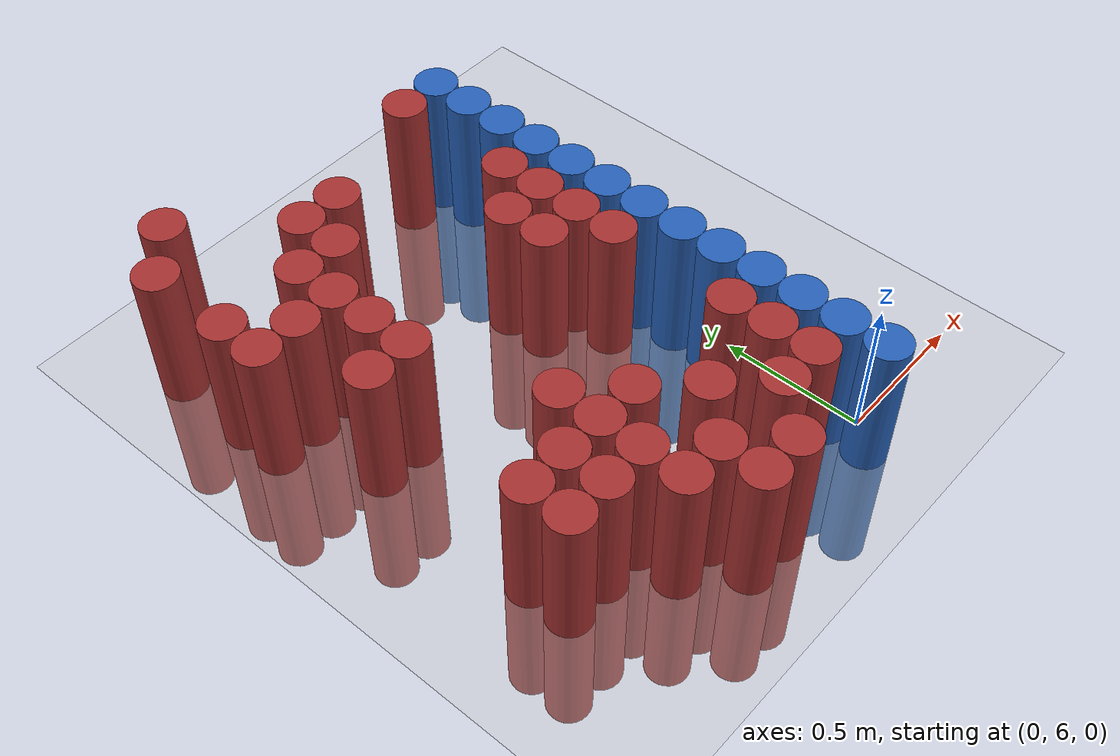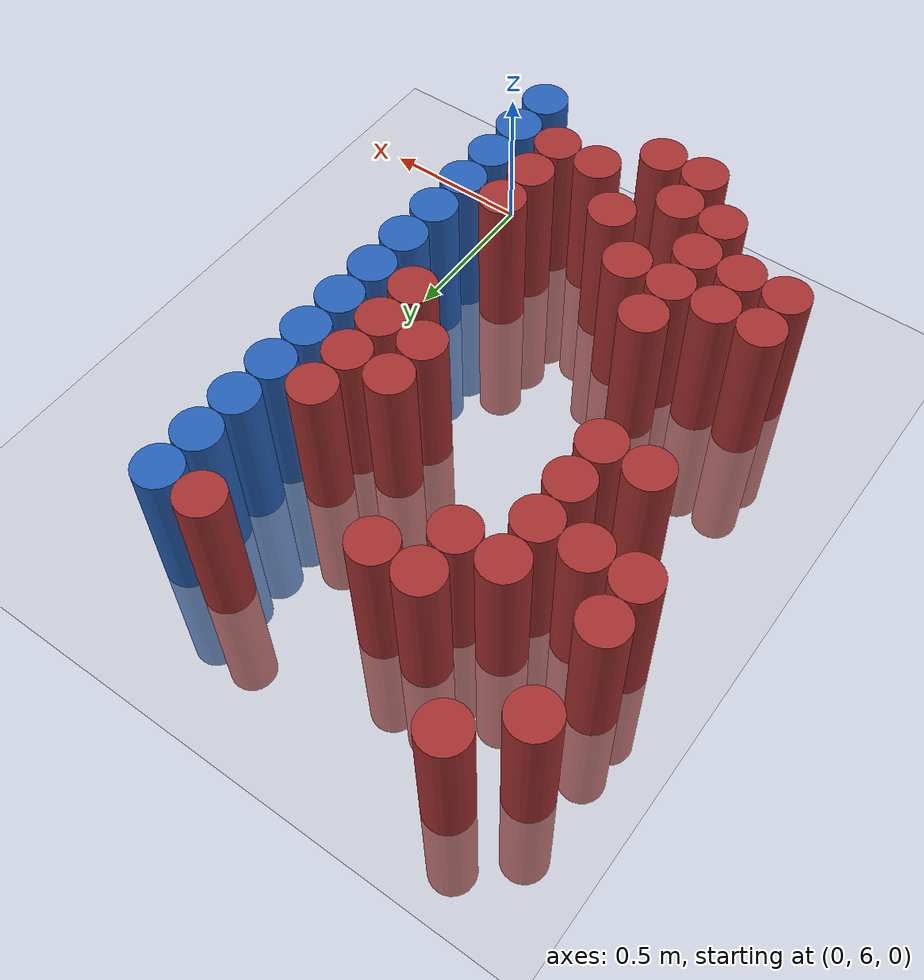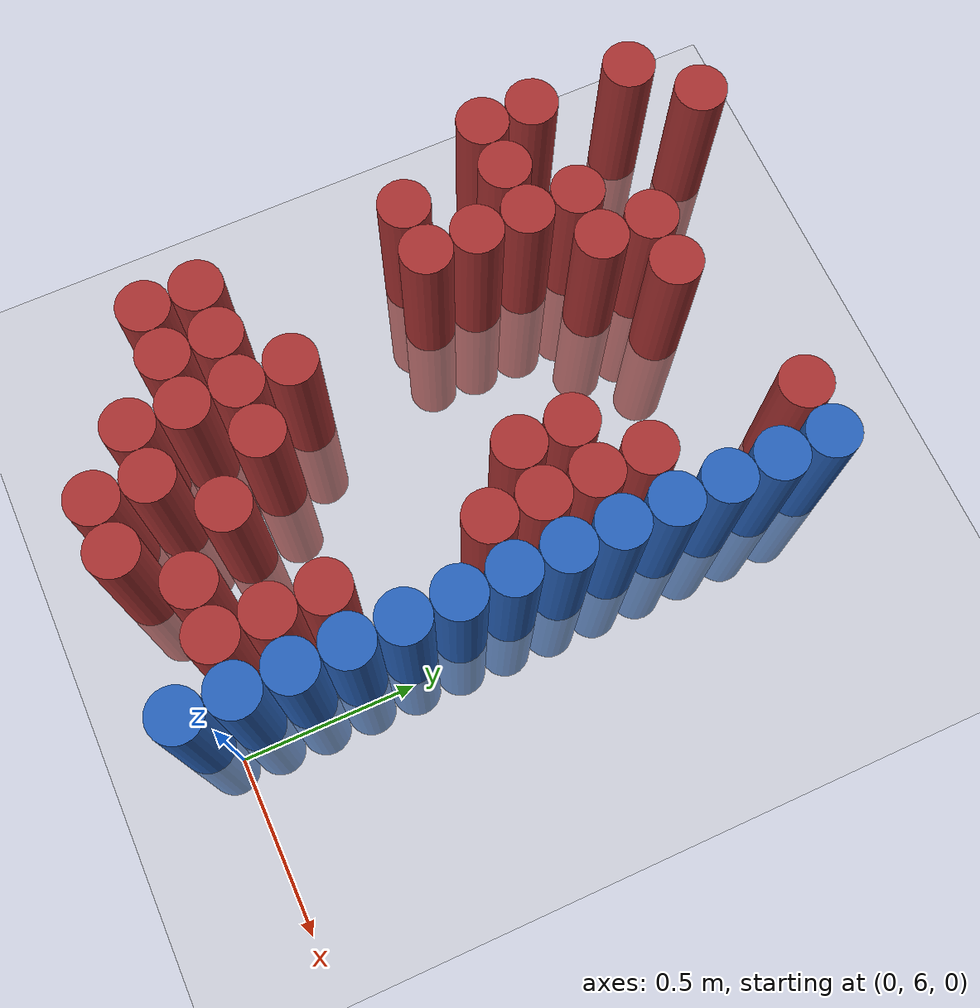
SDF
<sdf version="1.6">
 <world name="default">
  <model name="ground_plane">
   <static>1</static>
   <link name="link">
    <collision name="collision">
     <geometry><plane><normal>0 0 1</normal><size>100 100</size></plane></geometry>
     <surface><friction><ode><mu>100</mu><mu2>50</mu2></ode></friction></surface>
    </collision>
    <visual name="visual">
     <cast_shadows>0</cast_shadows>
     <geometry><plane><normal>0 0 1</normal><size>100 100</size></plane></geometry>
     <material>
      <script><uri>file://media/materials/scripts/gazebo.material</uri><name>Gazebo/Grey</name></script>
     </material>
    </visual>
   </link>
  </model>
  <model name="unit_cylinder_228">
   <static>1</static>
   <pose>-1.275000 7.275000 0.000000 0.000000 0.000000 0.000000</pose>
   <link name="link">
    <inertial>
     <mass>1</mass>
     <inertia><ixx>0.145833</ixx><ixy>0</ixy><ixz>0</ixz><iyy>0.145833</iyy><iyz>0</iyz><izz>0.125</izz></inertia>
    </inertial>
    <collision name="collision">
     <geometry><cylinder><radius>0.075000</radius><length>1</length></cylinder></geometry>
    </collision>
    <visual name="visual">
     <geometry><cylinder><radius>0.075000</radius><length>1</length></cylinder></geometry>
     <material>
      <ambient>0.648000 0.192000 0.192000 1</ambient>
      <diffuse>0.648000 0.192000 0.192000 1</diffuse>
     </material>
     <material>
      <script><name>Gazebo/Grey</name><uri>file://media/materials/scripts/gazebo.material</uri></script>
     </material>
    </visual>
   </link>
  </model>
  <model name="unit_cylinder_229">
   <static>1</static>
   <pose>-1.275000 7.425000 0.000000 0.000000 0.000000 0.000000</pose>
   <link name="link">
    <inertial>
     <mass>1</mass>
     <inertia><ixx>0.145833</ixx><ixy>0</ixy><ixz>0</ixz><iyy>0.145833</iyy><iyz>0</iyz><izz>0.125</izz></inertia>
    </inertial>
    <collision name="collision">
     <geometry><cylinder><radius>0.075000</radius><length>1</length></cylinder></geometry>
    </collision>
    <visual name="visual">
     <geometry><cylinder><radius>0.075000</radius><length>1</length></cylinder></geometry>
     <material>
      <ambient>0.648000 0.192000 0.192000 1</ambient>
      <diffuse>0.648000 0.192000 0.192000 1</diffuse>
     </material>
     <material>
      <script><name>Gazebo/Grey</name><uri>file://media/materials/scripts/gazebo.material</uri></script>
     </material>
    </visual>
   </link>
  </model>
  <model name="unit_cylinder_230">
   <static>1</static>
   <pose>-1.275000 7.725000 0.000000 0.000000 0.000000 0.000000</pose>
   <link name="link">
    <inertial>
     <mass>1</mass>
     <inertia><ixx>0.145833</ixx><ixy>0</ixy><ixz>0</ixz><iyy>0.145833</iyy><iyz>0</iyz><izz>0.125</izz></inertia>
    </inertial>
    <collision name="collision">
     <geometry><cylinder><radius>0.075000</radius><length>1</length></cylinder></geometry>
    </collision>
    <visual name="visual">
     <geometry><cylinder><radius>0.075000</radius><length>1</length></cylinder></geometry>
     <material>
      <ambient>0.648000 0.192000 0.192000 1</ambient>
      <diffuse>0.648000 0.192000 0.192000 1</diffuse>
     </material>
     <material>
      <script><name>Gazebo/Grey</name><uri>file://media/materials/scripts/gazebo.material</uri></script>
     </material>
    </visual>
   </link>
  </model>
  <model name="unit_cylinder_237">
   <static>1</static>
   <pose>-1.125000 6.225000 0.000000 0.000000 0.000000 0.000000</pose>
   <link name="link">
    <inertial>
     <mass>1</mass>
     <inertia><ixx>0.145833</ixx><ixy>0</ixy><ixz>0</ixz><iyy>0.145833</iyy><iyz>0</iyz><izz>0.125</izz></inertia>
    </inertial>
    <collision name="collision">
     <geometry><cylinder><radius>0.075000</radius><length>1</length></cylinder></geometry>
    </collision>
    <visual name="visual">
     <geometry><cylinder><radius>0.075000</radius><length>1</length></cylinder></geometry>
     <material>
      <ambient>0.648000 0.192000 0.192000 1</ambient>
      <diffuse>0.648000 0.192000 0.192000 1</diffuse>
     </material>
     <material>
      <script><name>Gazebo/Grey</name><uri>file://media/materials/scripts/gazebo.material</uri></script>
     </material>
    </visual>
   </link>
  </model>
  <model name="unit_cylinder_238">
   <static>1</static>
   <pose>-1.125000 6.375000 0.000000 0.000000 0.000000 0.000000</pose>
   <link name="link">
    <inertial>
     <mass>1</mass>
     <inertia><ixx>0.145833</ixx><ixy>0</ixy><ixz>0</ixz><iyy>0.145833</iyy><iyz>0</iyz><izz>0.125</izz></inertia>
    </inertial>
    <collision name="collision">
     <geometry><cylinder><radius>0.075000</radius><length>1</length></cylinder></geometry>
    </collision>
    <visual name="visual">
     <geometry><cylinder><radius>0.075000</radius><length>1</length></cylinder></geometry>
     <material>
      <ambient>0.648000 0.192000 0.192000 1</ambient>
      <diffuse>0.648000 0.192000 0.192000 1</diffuse>
     </material>
     <material>
      <script><name>Gazebo/Grey</name><uri>file://media/materials/scripts/gazebo.material</uri></script>
     </material>
    </visual>
   </link>
  </model>
  <model name="unit_cylinder_239">
   <static>1</static>
   <pose>-1.125000 6.975000 0.000000 0.000000 0.000000 0.000000</pose>
   <link name="link">
    <inertial>
     <mass>1</mass>
     <inertia><ixx>0.145833</ixx><ixy>0</ixy><ixz>0</ixz><iyy>0.145833</iyy><iyz>0</iyz><izz>0.125</izz></inertia>
    </inertial>
    <collision name="collision">
     <geometry><cylinder><radius>0.075000</radius><length>1</length></cylinder></geometry>
    </collision>
    <visual name="visual">
     <geometry><cylinder><radius>0.075000</radius><length>1</length></cylinder></geometry>
     <material>
      <ambient>0.648000 0.192000 0.192000 1</ambient>
      <diffuse>0.648000 0.192000 0.192000 1</diffuse>
     </material>
     <material>
      <script><name>Gazebo/Grey</name><uri>file://media/materials/scripts/gazebo.material</uri></script>
     </material>
    </visual>
   </link>
  </model>
  <model name="unit_cylinder_240">
   <static>1</static>
   <pose>-1.125000 7.275000 0.000000 0.000000 0.000000 0.000000</pose>
   <link name="link">
    <inertial>
     <mass>1</mass>
     <inertia><ixx>0.145833</ixx><ixy>0</ixy><ixz>0</ixz><iyy>0.145833</iyy><iyz>0</iyz><izz>0.125</izz></inertia>
    </inertial>
    <collision name="collision">
     <geometry><cylinder><radius>0.075000</radius><length>1</length></cylinder></geometry>
    </collision>
    <visual name="visual">
     <geometry><cylinder><radius>0.075000</radius><length>1</length></cylinder></geometry>
     <material>
      <ambient>0.648000 0.192000 0.192000 1</ambient>
      <diffuse>0.648000 0.192000 0.192000 1</diffuse>
     </material>
     <material>
      <script><name>Gazebo/Grey</name><uri>file://media/materials/scripts/gazebo.material</uri></script>
     </material>
    </visual>
   </link>
  </model>
  <model name="unit_cylinder_241">
   <static>1</static>
   <pose>-1.125000 7.875000 0.000000 0.000000 0.000000 0.000000</pose>
   <link name="link">
    <inertial>
     <mass>1</mass>
     <inertia><ixx>0.145833</ixx><ixy>0</ixy><ixz>0</ixz><iyy>0.145833</iyy><iyz>0</iyz><izz>0.125</izz></inertia>
    </inertial>
    <collision name="collision">
     <geometry><cylinder><radius>0.075000</radius><length>1</length></cylinder></geometry>
    </collision>
    <visual name="visual">
     <geometry><cylinder><radius>0.075000</radius><length>1</length></cylinder></geometry>
     <material>
      <ambient>0.648000 0.192000 0.192000 1</ambient>
      <diffuse>0.648000 0.192000 0.192000 1</diffuse>
     </material>
     <material>
      <script><name>Gazebo/Grey</name><uri>file://media/materials/scripts/gazebo.material</uri></script>
     </material>
    </visual>
   </link>
  </model>
  <model name="unit_cylinder_251">
   <static>1</static>
   <pose>-0.975000 6.225000 0.000000 0.000000 0.000000 0.000000</pose>
   <link name="link">
    <inertial>
     <mass>1</mass>
     <inertia><ixx>0.145833</ixx><ixy>0</ixy><ixz>0</ixz><iyy>0.145833</iyy><iyz>0</iyz><izz>0.125</izz></inertia>
    </inertial>
    <collision name="collision">
     <geometry><cylinder><radius>0.075000</radius><length>1</length></cylinder></geometry>
    </collision>
    <visual name="visual">
     <geometry><cylinder><radius>0.075000</radius><length>1</length></cylinder></geometry>
     <material>
      <ambient>0.648000 0.192000 0.192000 1</ambient>
      <diffuse>0.648000 0.192000 0.192000 1</diffuse>
     </material>
     <material>
      <script><name>Gazebo/Grey</name><uri>file://media/materials/scripts/gazebo.material</uri></script>
     </material>
    </visual>
   </link>
  </model>
  <model name="unit_cylinder_252">
   <static>1</static>
   <pose>-0.975000 6.375000 0.000000 0.000000 0.000000 0.000000</pose>
   <link name="link">
    <inertial>
     <mass>1</mass>
     <inertia><ixx>0.145833</ixx><ixy>0</ixy><ixz>0</ixz><iyy>0.145833</iyy><iyz>0</iyz><izz>0.125</izz></inertia>
    </inertial>
    <collision name="collision">
     <geometry><cylinder><radius>0.075000</radius><length>1</length></cylinder></geometry>
    </collision>
    <visual name="visual">
     <geometry><cylinder><radius>0.075000</radius><length>1</length></cylinder></geometry>
     <material>
      <ambient>0.648000 0.192000 0.192000 1</ambient>
      <diffuse>0.648000 0.192000 0.192000 1</diffuse>
     </material>
     <material>
      <script><name>Gazebo/Grey</name><uri>file://media/materials/scripts/gazebo.material</uri></script>
     </material>
    </visual>
   </link>
  </model>
  <model name="unit_cylinder_253">
   <static>1</static>
   <pose>-0.975000 6.975000 0.000000 0.000000 0.000000 0.000000</pose>
   <link name="link">
    <inertial>
     <mass>1</mass>
     <inertia><ixx>0.145833</ixx><ixy>0</ixy><ixz>0</ixz><iyy>0.145833</iyy><iyz>0</iyz><izz>0.125</izz></inertia>
    </inertial>
    <collision name="collision">
     <geometry><cylinder><radius>0.075000</radius><length>1</length></cylinder></geometry>
    </collision>
    <visual name="visual">
     <geometry><cylinder><radius>0.075000</radius><length>1</length></cylinder></geometry>
     <material>
      <ambient>0.648000 0.192000 0.192000 1</ambient>
      <diffuse>0.648000 0.192000 0.192000 1</diffuse>
     </material>
     <material>
      <script><name>Gazebo/Grey</name><uri>file://media/materials/scripts/gazebo.material</uri></script>
     </material>
    </visual>
   </link>
  </model>
  <model name="unit_cylinder_254">
   <static>1</static>
   <pose>-0.975000 7.125000 0.000000 0.000000 0.000000 0.000000</pose>
   <link name="link">
    <inertial>
     <mass>1</mass>
     <inertia><ixx>0.145833</ixx><ixy>0</ixy><ixz>0</ixz><iyy>0.145833</iyy><iyz>0</iyz><izz>0.125</izz></inertia>
    </inertial>
    <collision name="collision">
     <geometry><cylinder><radius>0.075000</radius><length>1</length></cylinder></geometry>
    </collision>
    <visual name="visual">
     <geometry><cylinder><radius>0.075000</radius><length>1</length></cylinder></geometry>
     <material>
      <ambient>0.648000 0.192000 0.192000 1</ambient>
      <diffuse>0.648000 0.192000 0.192000 1</diffuse>
     </material>
     <material>
      <script><name>Gazebo/Grey</name><uri>file://media/materials/scripts/gazebo.material</uri></script>
     </material>
    </visual>
   </link>
  </model>
  <model name="unit_cylinder_255">
   <static>1</static>
   <pose>-0.975000 7.275000 0.000000 0.000000 0.000000 0.000000</pose>
   <link name="link">
    <inertial>
     <mass>1</mass>
     <inertia><ixx>0.145833</ixx><ixy>0</ixy><ixz>0</ixz><iyy>0.145833</iyy><iyz>0</iyz><izz>0.125</izz></inertia>
    </inertial>
    <collision name="collision">
     <geometry><cylinder><radius>0.075000</radius><length>1</length></cylinder></geometry>
    </collision>
    <visual name="visual">
     <geometry><cylinder><radius>0.075000</radius><length>1</length></cylinder></geometry>
     <material>
      <ambient>0.648000 0.192000 0.192000 1</ambient>
      <diffuse>0.648000 0.192000 0.192000 1</diffuse>
     </material>
     <material>
      <script><name>Gazebo/Grey</name><uri>file://media/materials/scripts/gazebo.material</uri></script>
     </material>
    </visual>
   </link>
  </model>
  <model name="unit_cylinder_256">
   <static>1</static>
   <pose>-0.975000 7.425000 0.000000 0.000000 0.000000 0.000000</pose>
   <link name="link">
    <inertial>
     <mass>1</mass>
     <inertia><ixx>0.145833</ixx><ixy>0</ixy><ixz>0</ixz><iyy>0.145833</iyy><iyz>0</iyz><izz>0.125</izz></inertia>
    </inertial>
    <collision name="collision">
     <geometry><cylinder><radius>0.075000</radius><length>1</length></cylinder></geometry>
    </collision>
    <visual name="visual">
     <geometry><cylinder><radius>0.075000</radius><length>1</length></cylinder></geometry>
     <material>
      <ambient>0.648000 0.192000 0.192000 1</ambient>
      <diffuse>0.648000 0.192000 0.192000 1</diffuse>
     </material>
     <material>
      <script><name>Gazebo/Grey</name><uri>file://media/materials/scripts/gazebo.material</uri></script>
     </material>
    </visual>
   </link>
  </model>
  <model name="unit_cylinder_269">
   <static>1</static>
   <pose>-0.825000 6.075000 0.000000 0.000000 0.000000 0.000000</pose>
   <link name="link">
    <inertial>
     <mass>1</mass>
     <inertia><ixx>0.145833</ixx><ixy>0</ixy><ixz>0</ixz><iyy>0.145833</iyy><iyz>0</iyz><izz>0.125</izz></inertia>
    </inertial>
    <collision name="collision">
     <geometry><cylinder><radius>0.075000</radius><length>1</length></cylinder></geometry>
    </collision>
    <visual name="visual">
     <geometry><cylinder><radius>0.075000</radius><length>1</length></cylinder></geometry>
     <material>
      <ambient>0.648000 0.192000 0.192000 1</ambient>
      <diffuse>0.648000 0.192000 0.192000 1</diffuse>
     </material>
     <material>
      <script><name>Gazebo/Grey</name><uri>file://media/materials/scripts/gazebo.material</uri></script>
     </material>
    </visual>
   </link>
  </model>
  <model name="unit_cylinder_270">
   <static>1</static>
   <pose>-0.825000 6.225000 0.000000 0.000000 0.000000 0.000000</pose>
   <link name="link">
    <inertial>
     <mass>1</mass>
     <inertia><ixx>0.145833</ixx><ixy>0</ixy><ixz>0</ixz><iyy>0.145833</iyy><iyz>0</iyz><izz>0.125</izz></inertia>
    </inertial>
    <collision name="collision">
     <geometry><cylinder><radius>0.075000</radius><length>1</length></cylinder></geometry>
    </collision>
    <visual name="visual">
     <geometry><cylinder><radius>0.075000</radius><length>1</length></cylinder></geometry>
     <material>
      <ambient>0.648000 0.192000 0.192000 1</ambient>
      <diffuse>0.648000 0.192000 0.192000 1</diffuse>
     </material>
     <material>
      <script><name>Gazebo/Grey</name><uri>file://media/materials/scripts/gazebo.material</uri></script>
     </material>
    </visual>
   </link>
  </model>
  <model name="unit_cylinder_271">
   <static>1</static>
   <pose>-0.825000 6.375000 0.000000 0.000000 0.000000 0.000000</pose>
   <link name="link">
    <inertial>
     <mass>1</mass>
     <inertia><ixx>0.145833</ixx><ixy>0</ixy><ixz>0</ixz><iyy>0.145833</iyy><iyz>0</iyz><izz>0.125</izz></inertia>
    </inertial>
    <collision name="collision">
     <geometry><cylinder><radius>0.075000</radius><length>1</length></cylinder></geometry>
    </collision>
    <visual name="visual">
     <geometry><cylinder><radius>0.075000</radius><length>1</length></cylinder></geometry>
     <material>
      <ambient>0.648000 0.192000 0.192000 1</ambient>
      <diffuse>0.648000 0.192000 0.192000 1</diffuse>
     </material>
     <material>
      <script><name>Gazebo/Grey</name><uri>file://media/materials/scripts/gazebo.material</uri></script>
     </material>
    </visual>
   </link>
  </model>
  <model name="unit_cylinder_272">
   <static>1</static>
   <pose>-0.825000 6.525000 0.000000 0.000000 0.000000 0.000000</pose>
   <link name="link">
    <inertial>
     <mass>1</mass>
     <inertia><ixx>0.145833</ixx><ixy>0</ixy><ixz>0</ixz><iyy>0.145833</iyy><iyz>0</iyz><izz>0.125</izz></inertia>
    </inertial>
    <collision name="collision">
     <geometry><cylinder><radius>0.075000</radius><length>1</length></cylinder></geometry>
    </collision>
    <visual name="visual">
     <geometry><cylinder><radius>0.075000</radius><length>1</length></cylinder></geometry>
     <material>
      <ambient>0.648000 0.192000 0.192000 1</ambient>
      <diffuse>0.648000 0.192000 0.192000 1</diffuse>
     </material>
     <material>
      <script><name>Gazebo/Grey</name><uri>file://media/materials/scripts/gazebo.material</uri></script>
     </material>
    </visual>
   </link>
  </model>
  <model name="unit_cylinder_273">
   <static>1</static>
   <pose>-0.825000 7.425000 0.000000 0.000000 0.000000 0.000000</pose>
   <link name="link">
    <inertial>
     <mass>1</mass>
     <inertia><ixx>0.145833</ixx><ixy>0</ixy><ixz>0</ixz><iyy>0.145833</iyy><iyz>0</iyz><izz>0.125</izz></inertia>
    </inertial>
    <collision name="collision">
     <geometry><cylinder><radius>0.075000</radius><length>1</length></cylinder></geometry>
    </collision>
    <visual name="visual">
     <geometry><cylinder><radius>0.075000</radius><length>1</length></cylinder></geometry>
     <material>
      <ambient>0.648000 0.192000 0.192000 1</ambient>
      <diffuse>0.648000 0.192000 0.192000 1</diffuse>
     </material>
     <material>
      <script><name>Gazebo/Grey</name><uri>file://media/materials/scripts/gazebo.material</uri></script>
     </material>
    </visual>
   </link>
  </model>
  <model name="unit_cylinder_274">
   <static>1</static>
   <pose>-0.825000 7.575000 0.000000 0.000000 0.000000 0.000000</pose>
   <link name="link">
    <inertial>
     <mass>1</mass>
     <inertia><ixx>0.145833</ixx><ixy>0</ixy><ixz>0</ixz><iyy>0.145833</iyy><iyz>0</iyz><izz>0.125</izz></inertia>
    </inertial>
    <collision name="collision">
     <geometry><cylinder><radius>0.075000</radius><length>1</length></cylinder></geometry>
    </collision>
    <visual name="visual">
     <geometry><cylinder><radius>0.075000</radius><length>1</length></cylinder></geometry>
     <material>
      <ambient>0.648000 0.192000 0.192000 1</ambient>
      <diffuse>0.648000 0.192000 0.192000 1</diffuse>
     </material>
     <material>
      <script><name>Gazebo/Grey</name><uri>file://media/materials/scripts/gazebo.material</uri></script>
     </material>
    </visual>
   </link>
  </model>
  <model name="unit_cylinder_282">
   <static>1</static>
   <pose>-0.675000 5.925000 0.000000 0.000000 0.000000 0.000000</pose>
   <link name="link">
    <inertial>
     <mass>1</mass>
     <inertia><ixx>0.145833</ixx><ixy>0</ixy><ixz>0</ixz><iyy>0.145833</iyy><iyz>0</iyz><izz>0.125</izz></inertia>
    </inertial>
    <collision name="collision">
     <geometry><cylinder><radius>0.075000</radius><length>1</length></cylinder></geometry>
    </collision>
    <visual name="visual">
     <geometry><cylinder><radius>0.075000</radius><length>1</length></cylinder></geometry>
     <material>
      <ambient>0.648000 0.192000 0.192000 1</ambient>
      <diffuse>0.648000 0.192000 0.192000 1</diffuse>
     </material>
     <material>
      <script><name>Gazebo/Grey</name><uri>file://media/materials/scripts/gazebo.material</uri></script>
     </material>
    </visual>
   </link>
  </model>
  <model name="unit_cylinder_283">
   <static>1</static>
   <pose>-0.675000 6.075000 0.000000 0.000000 0.000000 0.000000</pose>
   <link name="link">
    <inertial>
     <mass>1</mass>
     <inertia><ixx>0.145833</ixx><ixy>0</ixy><ixz>0</ixz><iyy>0.145833</iyy><iyz>0</iyz><izz>0.125</izz></inertia>
    </inertial>
    <collision name="collision">
     <geometry><cylinder><radius>0.075000</radius><length>1</length></cylinder></geometry>
    </collision>
    <visual name="visual">
     <geometry><cylinder><radius>0.075000</radius><length>1</length></cylinder></geometry>
     <material>
      <ambient>0.648000 0.192000 0.192000 1</ambient>
      <diffuse>0.648000 0.192000 0.192000 1</diffuse>
     </material>
     <material>
      <script><name>Gazebo/Grey</name><uri>file://media/materials/scripts/gazebo.material</uri></script>
     </material>
    </visual>
   </link>
  </model>
  <model name="unit_cylinder_284">
   <static>1</static>
   <pose>-0.675000 6.375000 0.000000 0.000000 0.000000 0.000000</pose>
   <link name="link">
    <inertial>
     <mass>1</mass>
     <inertia><ixx>0.145833</ixx><ixy>0</ixy><ixz>0</ixz><iyy>0.145833</iyy><iyz>0</iyz><izz>0.125</izz></inertia>
    </inertial>
    <collision name="collision">
     <geometry><cylinder><radius>0.075000</radius><length>1</length></cylinder></geometry>
    </collision>
    <visual name="visual">
     <geometry><cylinder><radius>0.075000</radius><length>1</length></cylinder></geometry>
     <material>
      <ambient>0.648000 0.192000 0.192000 1</ambient>
      <diffuse>0.648000 0.192000 0.192000 1</diffuse>
     </material>
     <material>
      <script><name>Gazebo/Grey</name><uri>file://media/materials/scripts/gazebo.material</uri></script>
     </material>
    </visual>
   </link>
  </model>
  <model name="unit_cylinder_285">
   <static>1</static>
   <pose>-0.675000 7.575000 0.000000 0.000000 0.000000 0.000000</pose>
   <link name="link">
    <inertial>
     <mass>1</mass>
     <inertia><ixx>0.145833</ixx><ixy>0</ixy><ixz>0</ixz><iyy>0.145833</iyy><iyz>0</iyz><izz>0.125</izz></inertia>
    </inertial>
    <collision name="collision">
     <geometry><cylinder><radius>0.075000</radius><length>1</length></cylinder></geometry>
    </collision>
    <visual name="visual">
     <geometry><cylinder><radius>0.075000</radius><length>1</length></cylinder></geometry>
     <material>
      <ambient>0.648000 0.192000 0.192000 1</ambient>
      <diffuse>0.648000 0.192000 0.192000 1</diffuse>
     </material>
     <material>
      <script><name>Gazebo/Grey</name><uri>file://media/materials/scripts/gazebo.material</uri></script>
     </material>
    </visual>
   </link>
  </model>
  <model name="unit_cylinder_290">
   <static>1</static>
   <pose>-0.525000 5.925000 0.000000 0.000000 0.000000 0.000000</pose>
   <link name="link">
    <inertial>
     <mass>1</mass>
     <inertia><ixx>0.145833</ixx><ixy>0</ixy><ixz>0</ixz><iyy>0.145833</iyy><iyz>0</iyz><izz>0.125</izz></inertia>
    </inertial>
    <collision name="collision">
     <geometry><cylinder><radius>0.075000</radius><length>1</length></cylinder></geometry>
    </collision>
    <visual name="visual">
     <geometry><cylinder><radius>0.075000</radius><length>1</length></cylinder></geometry>
     <material>
      <ambient>0.648000 0.192000 0.192000 1</ambient>
      <diffuse>0.648000 0.192000 0.192000 1</diffuse>
     </material>
     <material>
      <script><name>Gazebo/Grey</name><uri>file://media/materials/scripts/gazebo.material</uri></script>
     </material>
    </visual>
   </link>
  </model>
  <model name="unit_cylinder_291">
   <static>1</static>
   <pose>-0.525000 6.225000 0.000000 0.000000 0.000000 0.000000</pose>
   <link name="link">
    <inertial>
     <mass>1</mass>
     <inertia><ixx>0.145833</ixx><ixy>0</ixy><ixz>0</ixz><iyy>0.145833</iyy><iyz>0</iyz><izz>0.125</izz></inertia>
    </inertial>
    <collision name="collision">
     <geometry><cylinder><radius>0.075000</radius><length>1</length></cylinder></geometry>
    </collision>
    <visual name="visual">
     <geometry><cylinder><radius>0.075000</radius><length>1</length></cylinder></geometry>
     <material>
      <ambient>0.648000 0.192000 0.192000 1</ambient>
      <diffuse>0.648000 0.192000 0.192000 1</diffuse>
     </material>
     <material>
      <script><name>Gazebo/Grey</name><uri>file://media/materials/scripts/gazebo.material</uri></script>
     </material>
    </visual>
   </link>
  </model>
  <model name="unit_cylinder_297">
   <static>1</static>
   <pose>-0.375000 6.075000 0.000000 0.000000 0.000000 0.000000</pose>
   <link name="link">
    <inertial>
     <mass>1</mass>
     <inertia><ixx>0.145833</ixx><ixy>0</ixy><ixz>0</ixz><iyy>0.145833</iyy><iyz>0</iyz><izz>0.125</izz></inertia>
    </inertial>
    <collision name="collision">
     <geometry><cylinder><radius>0.075000</radius><length>1</length></cylinder></geometry>
    </collision>
    <visual name="visual">
     <geometry><cylinder><radius>0.075000</radius><length>1</length></cylinder></geometry>
     <material>
      <ambient>0.648000 0.192000 0.192000 1</ambient>
      <diffuse>0.648000 0.192000 0.192000 1</diffuse>
     </material>
     <material>
      <script><name>Gazebo/Grey</name><uri>file://media/materials/scripts/gazebo.material</uri></script>
     </material>
    </visual>
   </link>
  </model>
  <model name="unit_cylinder_298">
   <static>1</static>
   <pose>-0.375000 6.975000 0.000000 0.000000 0.000000 0.000000</pose>
   <link name="link">
    <inertial>
     <mass>1</mass>
     <inertia><ixx>0.145833</ixx><ixy>0</ixy><ixz>0</ixz><iyy>0.145833</iyy><iyz>0</iyz><izz>0.125</izz></inertia>
    </inertial>
    <collision name="collision">
     <geometry><cylinder><radius>0.075000</radius><length>1</length></cylinder></geometry>
    </collision>
    <visual name="visual">
     <geometry><cylinder><radius>0.075000</radius><length>1</length></cylinder></geometry>
     <material>
      <ambient>0.648000 0.192000 0.192000 1</ambient>
      <diffuse>0.648000 0.192000 0.192000 1</diffuse>
     </material>
     <material>
      <script><name>Gazebo/Grey</name><uri>file://media/materials/scripts/gazebo.material</uri></script>
     </material>
    </visual>
   </link>
  </model>
  <model name="unit_cylinder_299">
   <static>1</static>
   <pose>-0.375000 7.125000 0.000000 0.000000 0.000000 0.000000</pose>
   <link name="link">
    <inertial>
     <mass>1</mass>
     <inertia><ixx>0.145833</ixx><ixy>0</ixy><ixz>0</ixz><iyy>0.145833</iyy><iyz>0</iyz><izz>0.125</izz></inertia>
    </inertial>
    <collision name="collision">
     <geometry><cylinder><radius>0.075000</radius><length>1</length></cylinder></geometry>
    </collision>
    <visual name="visual">
     <geometry><cylinder><radius>0.075000</radius><length>1</length></cylinder></geometry>
     <material>
      <ambient>0.648000 0.192000 0.192000 1</ambient>
      <diffuse>0.648000 0.192000 0.192000 1</diffuse>
     </material>
     <material>
      <script><name>Gazebo/Grey</name><uri>file://media/materials/scripts/gazebo.material</uri></script>
     </material>
    </visual>
   </link>
  </model>
  <model name="unit_cylinder_306">
   <static>1</static>
   <pose>-0.225000 6.075000 0.000000 0.000000 0.000000 0.000000</pose>
   <link name="link">
    <inertial>
     <mass>1</mass>
     <inertia><ixx>0.145833</ixx><ixy>0</ixy><ixz>0</ixz><iyy>0.145833</iyy><iyz>0</iyz><izz>0.125</izz></inertia>
    </inertial>
    <collision name="collision">
     <geometry><cylinder><radius>0.075000</radius><length>1</length></cylinder></geometry>
    </collision>
    <visual name="visual">
     <geometry><cylinder><radius>0.075000</radius><length>1</length></cylinder></geometry>
     <material>
      <ambient>0.648000 0.192000 0.192000 1</ambient>
      <diffuse>0.648000 0.192000 0.192000 1</diffuse>
     </material>
     <material>
      <script><name>Gazebo/Grey</name><uri>file://media/materials/scripts/gazebo.material</uri></script>
     </material>
    </visual>
   </link>
  </model>
  <model name="unit_cylinder_307">
   <static>1</static>
   <pose>-0.225000 6.225000 0.000000 0.000000 0.000000 0.000000</pose>
   <link name="link">
    <inertial>
     <mass>1</mass>
     <inertia><ixx>0.145833</ixx><ixy>0</ixy><ixz>0</ixz><iyy>0.145833</iyy><iyz>0</iyz><izz>0.125</izz></inertia>
    </inertial>
    <collision name="collision">
     <geometry><cylinder><radius>0.075000</radius><length>1</length></cylinder></geometry>
    </collision>
    <visual name="visual">
     <geometry><cylinder><radius>0.075000</radius><length>1</length></cylinder></geometry>
     <material>
      <ambient>0.648000 0.192000 0.192000 1</ambient>
      <diffuse>0.648000 0.192000 0.192000 1</diffuse>
     </material>
     <material>
      <script><name>Gazebo/Grey</name><uri>file://media/materials/scripts/gazebo.material</uri></script>
     </material>
    </visual>
   </link>
  </model>
  <model name="unit_cylinder_308">
   <static>1</static>
   <pose>-0.225000 6.375000 0.000000 0.000000 0.000000 0.000000</pose>
   <link name="link">
    <inertial>
     <mass>1</mass>
     <inertia><ixx>0.145833</ixx><ixy>0</ixy><ixz>0</ixz><iyy>0.145833</iyy><iyz>0</iyz><izz>0.125</izz></inertia>
    </inertial>
    <collision name="collision">
     <geometry><cylinder><radius>0.075000</radius><length>1</length></cylinder></geometry>
    </collision>
    <visual name="visual">
     <geometry><cylinder><radius>0.075000</radius><length>1</length></cylinder></geometry>
     <material>
      <ambient>0.648000 0.192000 0.192000 1</ambient>
      <diffuse>0.648000 0.192000 0.192000 1</diffuse>
     </material>
     <material>
      <script><name>Gazebo/Grey</name><uri>file://media/materials/scripts/gazebo.material</uri></script>
     </material>
    </visual>
   </link>
  </model>
  <model name="unit_cylinder_309">
   <static>1</static>
   <pose>-0.225000 6.825000 0.000000 0.000000 0.000000 0.000000</pose>
   <link name="link">
    <inertial>
     <mass>1</mass>
     <inertia><ixx>0.145833</ixx><ixy>0</ixy><ixz>0</ixz><iyy>0.145833</iyy><iyz>0</iyz><izz>0.125</izz></inertia>
    </inertial>
    <collision name="collision">
     <geometry><cylinder><radius>0.075000</radius><length>1</length></cylinder></geometry>
    </collision>
    <visual name="visual">
     <geometry><cylinder><radius>0.075000</radius><length>1</length></cylinder></geometry>
     <material>
      <ambient>0.648000 0.192000 0.192000 1</ambient>
      <diffuse>0.648000 0.192000 0.192000 1</diffuse>
     </material>
     <material>
      <script><name>Gazebo/Grey</name><uri>file://media/materials/scripts/gazebo.material</uri></script>
     </material>
    </visual>
   </link>
  </model>
  <model name="unit_cylinder_310">
   <static>1</static>
   <pose>-0.225000 6.975000 0.000000 0.000000 0.000000 0.000000</pose>
   <link name="link">
    <inertial>
     <mass>1</mass>
     <inertia><ixx>0.145833</ixx><ixy>0</ixy><ixz>0</ixz><iyy>0.145833</iyy><iyz>0</iyz><izz>0.125</izz></inertia>
    </inertial>
    <collision name="collision">
     <geometry><cylinder><radius>0.075000</radius><length>1</length></cylinder></geometry>
    </collision>
    <visual name="visual">
     <geometry><cylinder><radius>0.075000</radius><length>1</length></cylinder></geometry>
     <material>
      <ambient>0.648000 0.192000 0.192000 1</ambient>
      <diffuse>0.648000 0.192000 0.192000 1</diffuse>
     </material>
     <material>
      <script><name>Gazebo/Grey</name><uri>file://media/materials/scripts/gazebo.material</uri></script>
     </material>
    </visual>
   </link>
  </model>
  <model name="unit_cylinder_311">
   <static>1</static>
   <pose>-0.225000 7.125000 0.000000 0.000000 0.000000 0.000000</pose>
   <link name="link">
    <inertial>
     <mass>1</mass>
     <inertia><ixx>0.145833</ixx><ixy>0</ixy><ixz>0</ixz><iyy>0.145833</iyy><iyz>0</iyz><izz>0.125</izz></inertia>
    </inertial>
    <collision name="collision">
     <geometry><cylinder><radius>0.075000</radius><length>1</length></cylinder></geometry>
    </collision>
    <visual name="visual">
     <geometry><cylinder><radius>0.075000</radius><length>1</length></cylinder></geometry>
     <material>
      <ambient>0.648000 0.192000 0.192000 1</ambient>
      <diffuse>0.648000 0.192000 0.192000 1</diffuse>
     </material>
     <material>
      <script><name>Gazebo/Grey</name><uri>file://media/materials/scripts/gazebo.material</uri></script>
     </material>
    </visual>
   </link>
  </model>
  <model name="unit_cylinder_312">
   <static>1</static>
   <pose>-0.225000 7.275000 0.000000 0.000000 0.000000 0.000000</pose>
   <link name="link">
    <inertial>
     <mass>1</mass>
     <inertia><ixx>0.145833</ixx><ixy>0</ixy><ixz>0</ixz><iyy>0.145833</iyy><iyz>0</iyz><izz>0.125</izz></inertia>
    </inertial>
    <collision name="collision">
     <geometry><cylinder><radius>0.075000</radius><length>1</length></cylinder></geometry>
    </collision>
    <visual name="visual">
     <geometry><cylinder><radius>0.075000</radius><length>1</length></cylinder></geometry>
     <material>
      <ambient>0.648000 0.192000 0.192000 1</ambient>
      <diffuse>0.648000 0.192000 0.192000 1</diffuse>
     </material>
     <material>
      <script><name>Gazebo/Grey</name><uri>file://media/materials/scripts/gazebo.material</uri></script>
     </material>
    </visual>
   </link>
  </model>
  <model name="unit_cylinder_313">
   <static>1</static>
   <pose>-0.225000 7.725000 0.000000 0.000000 0.000000 0.000000</pose>
   <link name="link">
    <inertial>
     <mass>1</mass>
     <inertia><ixx>0.145833</ixx><ixy>0</ixy><ixz>0</ixz><iyy>0.145833</iyy><iyz>0</iyz><izz>0.125</izz></inertia>
    </inertial>
    <collision name="collision">
     <geometry><cylinder><radius>0.075000</radius><length>1</length></cylinder></geometry>
    </collision>
    <visual name="visual">
     <geometry><cylinder><radius>0.075000</radius><length>1</length></cylinder></geometry>
     <material>
      <ambient>0.648000 0.192000 0.192000 1</ambient>
      <diffuse>0.648000 0.192000 0.192000 1</diffuse>
     </material>
     <material>
      <script><name>Gazebo/Grey</name><uri>file://media/materials/scripts/gazebo.material</uri></script>
     </material>
    </visual>
   </link>
  </model>
  <model name="unit_cylinder_324">
   <static>1</static>
   <pose>-0.075000 5.925000 0.000000 0.000000 0.000000 0.000000</pose>
   <link name="link">
    <inertial>
     <mass>1</mass>
     <inertia><ixx>0.145833</ixx><ixy>0</ixy><ixz>0</ixz><iyy>0.145833</iyy><iyz>0</iyz><izz>0.125</izz></inertia>
    </inertial>
    <collision name="collision">
     <geometry><cylinder><radius>0.075000</radius><length>1</length></cylinder></geometry>
    </collision>
    <visual name="visual">
     <geometry><cylinder><radius>0.075000</radius><length>1</length></cylinder></geometry>
     <material>
      <ambient>0.152000 0.379000 0.720000 1</ambient>
      <diffuse>0.152000 0.379000 0.720000 1</diffuse>
     </material>
     <material>
      <script><name>Gazebo/Grey</name><uri>file://media/materials/scripts/gazebo.material</uri></script>
     </material>
    </visual>
   </link>
  </model>
  <model name="unit_cylinder_325">
   <static>1</static>
   <pose>-0.075000 6.075000 0.000000 0.000000 0.000000 0.000000</pose>
   <link name="link">
    <inertial>
     <mass>1</mass>
     <inertia><ixx>0.145833</ixx><ixy>0</ixy><ixz>0</ixz><iyy>0.145833</iyy><iyz>0</iyz><izz>0.125</izz></inertia>
    </inertial>
    <collision name="collision">
     <geometry><cylinder><radius>0.075000</radius><length>1</length></cylinder></geometry>
    </collision>
    <visual name="visual">
     <geometry><cylinder><radius>0.075000</radius><length>1</length></cylinder></geometry>
     <material>
      <ambient>0.152000 0.379000 0.720000 1</ambient>
      <diffuse>0.152000 0.379000 0.720000 1</diffuse>
     </material>
     <material>
      <script><name>Gazebo/Grey</name><uri>file://media/materials/scripts/gazebo.material</uri></script>
     </material>
    </visual>
   </link>
  </model>
  <model name="unit_cylinder_326">
   <static>1</static>
   <pose>-0.075000 6.225000 0.000000 0.000000 0.000000 0.000000</pose>
   <link name="link">
    <inertial>
     <mass>1</mass>
     <inertia><ixx>0.145833</ixx><ixy>0</ixy><ixz>0</ixz><iyy>0.145833</iyy><iyz>0</iyz><izz>0.125</izz></inertia>
    </inertial>
    <collision name="collision">
     <geometry><cylinder><radius>0.075000</radius><length>1</length></cylinder></geometry>
    </collision>
    <visual name="visual">
     <geometry><cylinder><radius>0.075000</radius><length>1</length></cylinder></geometry>
     <material>
      <ambient>0.152000 0.379000 0.720000 1</ambient>
      <diffuse>0.152000 0.379000 0.720000 1</diffuse>
     </material>
     <material>
      <script><name>Gazebo/Grey</name><uri>file://media/materials/scripts/gazebo.material</uri></script>
     </material>
    </visual>
   </link>
  </model>
  <model name="unit_cylinder_327">
   <static>1</static>
   <pose>-0.075000 6.375000 0.000000 0.000000 0.000000 0.000000</pose>
   <link name="link">
    <inertial>
     <mass>1</mass>
     <inertia><ixx>0.145833</ixx><ixy>0</ixy><ixz>0</ixz><iyy>0.145833</iyy><iyz>0</iyz><izz>0.125</izz></inertia>
    </inertial>
    <collision name="collision">
     <geometry><cylinder><radius>0.075000</radius><length>1</length></cylinder></geometry>
    </collision>
    <visual name="visual">
     <geometry><cylinder><radius>0.075000</radius><length>1</length></cylinder></geometry>
     <material>
      <ambient>0.152000 0.379000 0.720000 1</ambient>
      <diffuse>0.152000 0.379000 0.720000 1</diffuse>
     </material>
     <material>
      <script><name>Gazebo/Grey</name><uri>file://media/materials/scripts/gazebo.material</uri></script>
     </material>
    </visual>
   </link>
  </model>
  <model name="unit_cylinder_328">
   <static>1</static>
   <pose>-0.075000 6.525000 0.000000 0.000000 0.000000 0.000000</pose>
   <link name="link">
    <inertial>
     <mass>1</mass>
     <inertia><ixx>0.145833</ixx><ixy>0</ixy><ixz>0</ixz><iyy>0.145833</iyy><iyz>0</iyz><izz>0.125</izz></inertia>
    </inertial>
    <collision name="collision">
     <geometry><cylinder><radius>0.075000</radius><length>1</length></cylinder></geometry>
    </collision>
    <visual name="visual">
     <geometry><cylinder><radius>0.075000</radius><length>1</length></cylinder></geometry>
     <material>
      <ambient>0.152000 0.379000 0.720000 1</ambient>
      <diffuse>0.152000 0.379000 0.720000 1</diffuse>
     </material>
     <material>
      <script><name>Gazebo/Grey</name><uri>file://media/materials/scripts/gazebo.material</uri></script>
     </material>
    </visual>
   </link>
  </model>
  <model name="unit_cylinder_329">
   <static>1</static>
   <pose>-0.075000 6.675000 0.000000 0.000000 0.000000 0.000000</pose>
   <link name="link">
    <inertial>
     <mass>1</mass>
     <inertia><ixx>0.145833</ixx><ixy>0</ixy><ixz>0</ixz><iyy>0.145833</iyy><iyz>0</iyz><izz>0.125</izz></inertia>
    </inertial>
    <collision name="collision">
     <geometry><cylinder><radius>0.075000</radius><length>1</length></cylinder></geometry>
    </collision>
    <visual name="visual">
     <geometry><cylinder><radius>0.075000</radius><length>1</length></cylinder></geometry>
     <material>
      <ambient>0.152000 0.379000 0.720000 1</ambient>
      <diffuse>0.152000 0.379000 0.720000 1</diffuse>
     </material>
     <material>
      <script><name>Gazebo/Grey</name><uri>file://media/materials/scripts/gazebo.material</uri></script>
     </material>
    </visual>
   </link>
  </model>
  <model name="unit_cylinder_330">
   <static>1</static>
   <pose>-0.075000 6.825000 0.000000 0.000000 0.000000 0.000000</pose>
   <link name="link">
    <inertial>
     <mass>1</mass>
     <inertia><ixx>0.145833</ixx><ixy>0</ixy><ixz>0</ixz><iyy>0.145833</iyy><iyz>0</iyz><izz>0.125</izz></inertia>
    </inertial>
    <collision name="collision">
     <geometry><cylinder><radius>0.075000</radius><length>1</length></cylinder></geometry>
    </collision>
    <visual name="visual">
     <geometry><cylinder><radius>0.075000</radius><length>1</length></cylinder></geometry>
     <material>
      <ambient>0.152000 0.379000 0.720000 1</ambient>
      <diffuse>0.152000 0.379000 0.720000 1</diffuse>
     </material>
     <material>
      <script><name>Gazebo/Grey</name><uri>file://media/materials/scripts/gazebo.material</uri></script>
     </material>
    </visual>
   </link>
  </model>
  <model name="unit_cylinder_331">
   <static>1</static>
   <pose>-0.075000 6.975000 0.000000 0.000000 0.000000 0.000000</pose>
   <link name="link">
    <inertial>
     <mass>1</mass>
     <inertia><ixx>0.145833</ixx><ixy>0</ixy><ixz>0</ixz><iyy>0.145833</iyy><iyz>0</iyz><izz>0.125</izz></inertia>
    </inertial>
    <collision name="collision">
     <geometry><cylinder><radius>0.075000</radius><length>1</length></cylinder></geometry>
    </collision>
    <visual name="visual">
     <geometry><cylinder><radius>0.075000</radius><length>1</length></cylinder></geometry>
     <material>
      <ambient>0.152000 0.379000 0.720000 1</ambient>
      <diffuse>0.152000 0.379000 0.720000 1</diffuse>
     </material>
     <material>
      <script><name>Gazebo/Grey</name><uri>file://media/materials/scripts/gazebo.material</uri></script>
     </material>
    </visual>
   </link>
  </model>
  <model name="unit_cylinder_332">
   <static>1</static>
   <pose>-0.075000 7.125000 0.000000 0.000000 0.000000 0.000000</pose>
   <link name="link">
    <inertial>
     <mass>1</mass>
     <inertia><ixx>0.145833</ixx><ixy>0</ixy><ixz>0</ixz><iyy>0.145833</iyy><iyz>0</iyz><izz>0.125</izz></inertia>
    </inertial>
    <collision name="collision">
     <geometry><cylinder><radius>0.075000</radius><length>1</length></cylinder></geometry>
    </collision>
    <visual name="visual">
     <geometry><cylinder><radius>0.075000</radius><length>1</length></cylinder></geometry>
     <material>
      <ambient>0.152000 0.379000 0.720000 1</ambient>
      <diffuse>0.152000 0.379000 0.720000 1</diffuse>
     </material>
     <material>
      <script><name>Gazebo/Grey</name><uri>file://media/materials/scripts/gazebo.material</uri></script>
     </material>
    </visual>
   </link>
  </model>
  <model name="unit_cylinder_333">
   <static>1</static>
   <pose>-0.075000 7.275000 0.000000 0.000000 0.000000 0.000000</pose>
   <link name="link">
    <inertial>
     <mass>1</mass>
     <inertia><ixx>0.145833</ixx><ixy>0</ixy><ixz>0</ixz><iyy>0.145833</iyy><iyz>0</iyz><izz>0.125</izz></inertia>
    </inertial>
    <collision name="collision">
     <geometry><cylinder><radius>0.075000</radius><length>1</length></cylinder></geometry>
    </collision>
    <visual name="visual">
     <geometry><cylinder><radius>0.075000</radius><length>1</length></cylinder></geometry>
     <material>
      <ambient>0.152000 0.379000 0.720000 1</ambient>
      <diffuse>0.152000 0.379000 0.720000 1</diffuse>
     </material>
     <material>
      <script><name>Gazebo/Grey</name><uri>file://media/materials/scripts/gazebo.material</uri></script>
     </material>
    </visual>
   </link>
  </model>
  <model name="unit_cylinder_334">
   <static>1</static>
   <pose>-0.075000 7.425000 0.000000 0.000000 0.000000 0.000000</pose>
   <link name="link">
    <inertial>
     <mass>1</mass>
     <inertia><ixx>0.145833</ixx><ixy>0</ixy><ixz>0</ixz><iyy>0.145833</iyy><iyz>0</iyz><izz>0.125</izz></inertia>
    </inertial>
    <collision name="collision">
     <geometry><cylinder><radius>0.075000</radius><length>1</length></cylinder></geometry>
    </collision>
    <visual name="visual">
     <geometry><cylinder><radius>0.075000</radius><length>1</length></cylinder></geometry>
     <material>
      <ambient>0.152000 0.379000 0.720000 1</ambient>
      <diffuse>0.152000 0.379000 0.720000 1</diffuse>
     </material>
     <material>
      <script><name>Gazebo/Grey</name><uri>file://media/materials/scripts/gazebo.material</uri></script>
     </material>
    </visual>
   </link>
  </model>
  <model name="unit_cylinder_335">
   <static>1</static>
   <pose>-0.075000 7.575000 0.000000 0.000000 0.000000 0.000000</pose>
   <link name="link">
    <inertial>
     <mass>1</mass>
     <inertia><ixx>0.145833</ixx><ixy>0</ixy><ixz>0</ixz><iyy>0.145833</iyy><iyz>0</iyz><izz>0.125</izz></inertia>
    </inertial>
    <collision name="collision">
     <geometry><cylinder><radius>0.075000</radius><length>1</length></cylinder></geometry>
    </collision>
    <visual name="visual">
     <geometry><cylinder><radius>0.075000</radius><length>1</length></cylinder></geometry>
     <material>
      <ambient>0.152000 0.379000 0.720000 1</ambient>
      <diffuse>0.152000 0.379000 0.720000 1</diffuse>
     </material>
     <material>
      <script><name>Gazebo/Grey</name><uri>file://media/materials/scripts/gazebo.material</uri></script>
     </material>
    </visual>
   </link>
  </model>
  <model name="unit_cylinder_336">
   <static>1</static>
   <pose>-0.075000 7.725000 0.000000 0.000000 0.000000 0.000000</pose>
   <link name="link">
    <inertial>
     <mass>1</mass>
     <inertia><ixx>0.145833</ixx><ixy>0</ixy><ixz>0</ixz><iyy>0.145833</iyy><iyz>0</iyz><izz>0.125</izz></inertia>
    </inertial>
    <collision name="collision">
     <geometry><cylinder><radius>0.075000</radius><length>1</length></cylinder></geometry>
    </collision>
    <visual name="visual">
     <geometry><cylinder><radius>0.075000</radius><length>1</length></cylinder></geometry>
     <material>
      <ambient>0.152000 0.379000 0.720000 1</ambient>
      <diffuse>0.152000 0.379000 0.720000 1</diffuse>
     </material>
     <material>
      <script><name>Gazebo/Grey</name><uri>file://media/materials/scripts/gazebo.material</uri></script>
     </material>
    </visual>
   </link>
  </model>
 </world>
</sdf>
